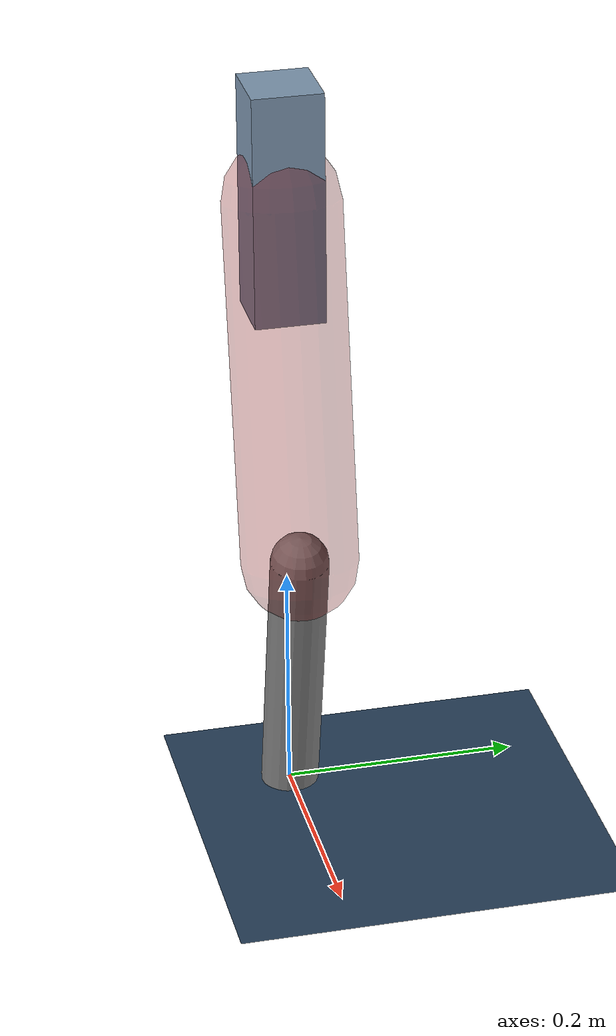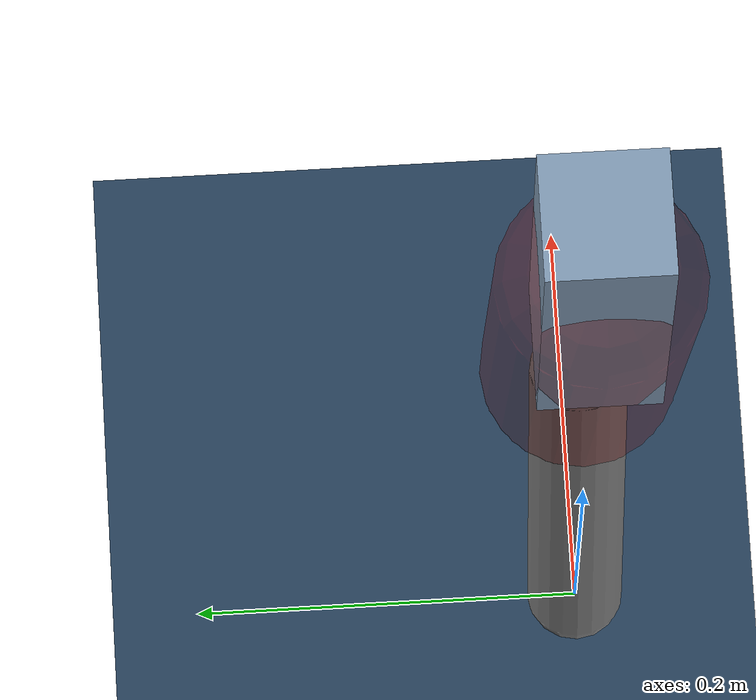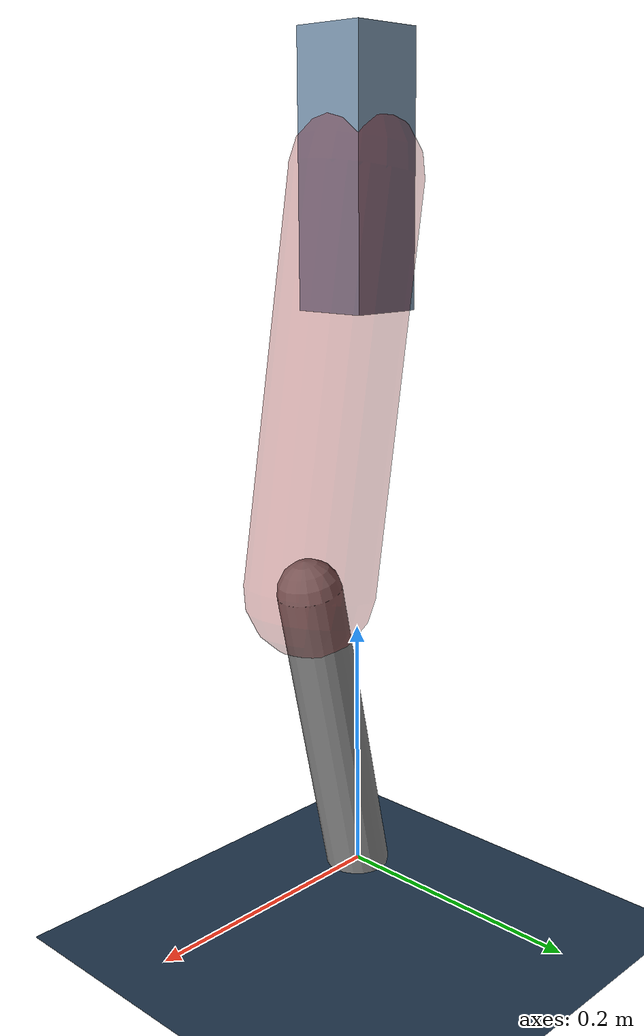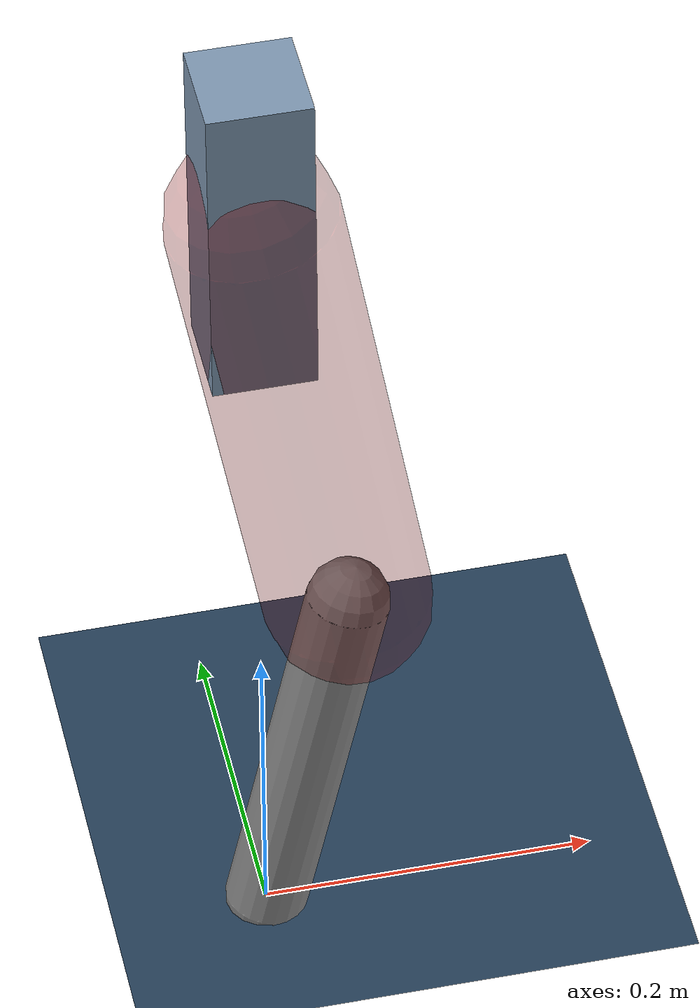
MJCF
<mujoco model="Hopper2D">
	<compiler inertiafromgeom="true" angle="radian" />
	<option timestep="0.001" integrator="implicit" cone="elliptic" solver="Newton" tolerance="1e-10" />

	<default>
		<geom contype="1" conaffinity="1" condim="3" friction="2 0.005 0.0001" solref="0.005 1" />
		<joint limited="true" damping="0.1" />
	</default>

	<asset>
		<texture name="skybox" type="skybox" builtin="gradient" rgb1=".4 .6 .8" rgb2="0 0 0" width="800" height="800" />
		<texture name="grid" type="2d" builtin="checker" rgb1=".1 .2 .3" rgb2=".2 .3 .4" width="300" height="300" mark="edge" markrgb=".2 .3 .4" />
		<material name="ground" texture="grid" texrepeat="1 1" texuniform="true" reflectance="0.1" />
		<material name="leg" rgba="0.5 0.6 0.7 1" />
	</asset>

	<worldbody>

		<geom name="floor" type="plane" size="5 5 0.25" material="ground" />

		<light directional="false" diffuse="0.8 0.8 0.8" specular="0.3 0.3 0.3" pos="0 0 2" dir="0 0 -1" />
		<light mode="targetbodycom" target="base" directional="false" diffuse="0.8 0.8 0.8" specular="0.3 0.3 0.3" pos="0 0 2" dir="0 0 -1" />

		<camera name="fixed" pos="0 -2 1" xyaxes="1 0 0 0 0 1" />
		<camera name="tracking" mode="trackcom" pos="0 -3 1" />

		<body name="root" pos="0 0 0.5476032035230038">
			<joint name="slide_x" type="slide" axis="1 0 0" range="-100 100" />
			<joint name="slide_z" type="slide" axis="0 0 1" range="0 10" />

			<body name="base" pos="0 0 0">
				<geom name="torso" type="box" size="0.03 0.03 0.1" mass="2.39" material="leg" />

				<body name="link1" pos="0 0 0" euler="0 1.4021396059050868 0">
					<joint type="hinge" axis="0 -1 0" pos="0 0 0" name="hinge1" limited="true" range="-3.14 3.14" stiffness="0" damping="0.1" />
					<geom name="thigh" type="capsule" fromto="0 0 0 0.31097768186479735 0 0" size="0.05" rgba="0.5 0 0 0.3" mass="1.0185397410349528" />

					<body name="link2" pos="0.31097768186479735 0 0" euler="0 0.38192745029544845 0">
						<joint type="hinge" axis="0 -1 0" pos="0 0 0" name="hinge2" limited="true" range="-3.14 3.14" stiffness="0" damping="0.1" />
						<geom name="shank" type="capsule" fromto="0 0 0 0.24662552165820645 0 0" size="0.025" mass="0.4397629694923858" />

					</body>
				</body>
			</body>
		</body>
	</worldbody>

	<actuator>
		<motor name="torque1" joint="hinge1" ctrlrange="-92.87298701631488 92.87298701631488" ctrllimited="true" gear="1" />
		<motor name="torque2" joint="hinge2" ctrlrange="-52.38507887883474 52.38507887883474" ctrllimited="true" gear="1" />
	</actuator>
</mujoco>
